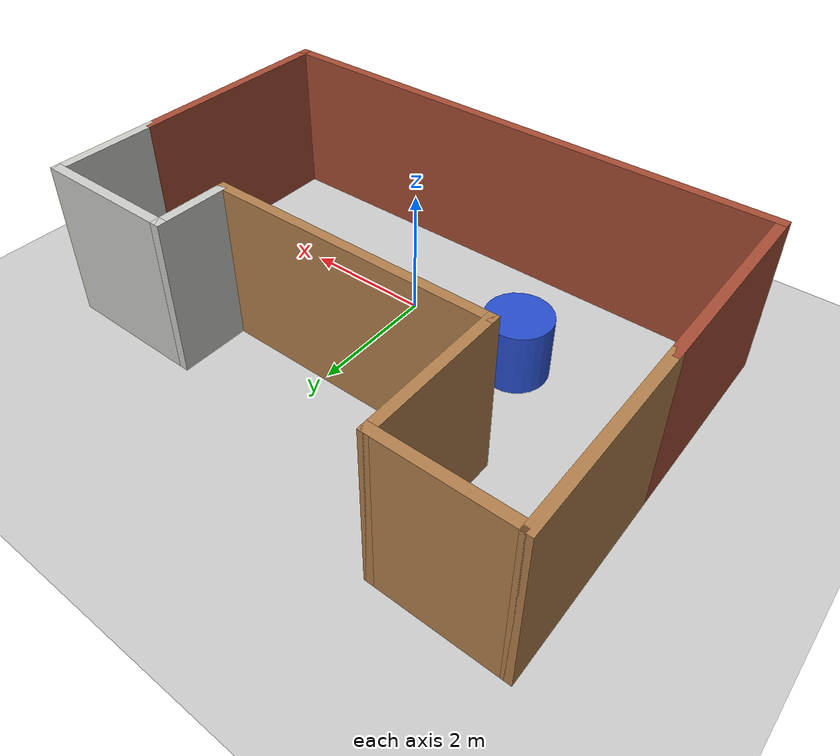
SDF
<sdf version="1.6">
 <world name="default">
  <light name="sun" type="directional">
   <pose>0 0 10 0 -0 0</pose>
   <diffuse>0.8 0.8 0.8 1</diffuse>
   <specular>0.2 0.2 0.2 1</specular>
   <attenuation>
    <range>1000</range>
    <constant>0.9</constant>
    <linear>0.01</linear>
    <quadratic>0.001</quadratic>
   </attenuation>
   <direction>-0.5 0.1 -0.9</direction>
  </light>
  <model name="ground_plane">
   <static>1</static>
   <link name="link">
    <collision name="collision">
     <geometry><plane><normal>0 0 1</normal><size>100 100</size></plane></geometry>
     <surface>
      <contact><collide_bitmask>65535</collide_bitmask></contact>
      <friction><ode><mu>100</mu><mu2>50</mu2></ode></friction>
     </surface>
    </collision>
    <visual name="visual">
     <cast_shadows>0</cast_shadows>
     <geometry><plane><normal>0 0 1</normal><size>100 100</size></plane></geometry>
     <material>
      <script><uri>file://media/materials/scripts/gazebo.material</uri><name>Gazebo/Grey</name></script>
     </material>
    </visual>
   </link>
  </model>
  <gravity>0 0 -9.8</gravity>
  <magnetic_field>6e-06 2.3e-05 -4.2e-05</magnetic_field>
  <atmosphere type="adiabatic"/>
  <physics name="default_physics" default="0" type="ode">
   <max_step_size>0.001</max_step_size>
   <real_time_factor>1</real_time_factor>
   <real_time_update_rate>1000</real_time_update_rate>
  </physics>
  <scene><ambient>0.4 0.4 0.4 1</ambient><background>0.7 0.7 0.7 1</background><shadows>1</shadows></scene>
  <spherical_coordinates>
   <surface_model>EARTH_WGS84</surface_model>
   <latitude_deg>0</latitude_deg>
   <longitude_deg>0</longitude_deg>
   <elevation>0</elevation>
   <heading_deg>0</heading_deg>
  </spherical_coordinates>
  <model name="Untitled">
   <pose>-0.2958 1.13226 0 0 -0 0</pose>
   <link name="Wall_28">
    <collision name="Wall_28_Collision">
     <geometry><box><size>3.25 0.15 2.5</size></box></geometry>
     <pose>0 0 1.25 0 -0 0</pose>
    </collision>
    <visual name="Wall_28_Visual">
     <pose>0 0 1.25 0 -0 0</pose>
     <geometry><box><size>3.25 0.15 2.5</size></box></geometry>
     <material>
      <script><uri>file://media/materials/scripts/gazebo.material</uri><name>Gazebo/Bricks</name></script>
      <ambient>1 1 1 1</ambient>
     </material>
     <meta><layer>0</layer></meta>
    </visual>
    <pose>-4.175 -1.425 0 0 0 -1.5708</pose>
   </link>
   <link name="Wall_29">
    <collision name="Wall_29_Collision">
     <geometry><box><size>8.5 0.15 2.5</size></box></geometry>
     <pose>0 0 1.25 0 -0 0</pose>
    </collision>
    <visual name="Wall_29_Visual">
     <pose>0 0 1.25 0 -0 0</pose>
     <geometry><box><size>8.5 0.15 2.5</size></box></geometry>
     <material>
      <script><uri>file://media/materials/scripts/gazebo.material</uri><name>Gazebo/Bricks</name></script>
      <ambient>1 1 1 1</ambient>
     </material>
     <meta><layer>0</layer></meta>
    </visual>
    <pose>0 -2.975 0 0 -0 0</pose>
   </link>
   <link name="Wall_30">
    <collision name="Wall_30_Collision">
     <geometry><box><size>3.5 0.15 2.5</size></box></geometry>
     <pose>0 0 1.25 0 -0 0</pose>
    </collision>
    <visual name="Wall_30_Visual">
     <pose>0 0 1.25 0 -0 0</pose>
     <geometry><box><size>3.5 0.15 2.5</size></box></geometry>
     <material>
      <script><uri>file://media/materials/scripts/gazebo.material</uri><name>Gazebo/Bricks</name></script>
      <ambient>1 1 1 1</ambient>
     </material>
     <meta><layer>0</layer></meta>
    </visual>
    <pose>4.175 -1.3 0 0 -0 1.5708</pose>
   </link>
   <link name="Wall_32">
    <collision name="Wall_32_Collision">
     <geometry><box><size>3 0.15 2.5</size></box></geometry>
     <pose>0 0 1.25 0 -0 0</pose>
    </collision>
    <visual name="Wall_32_Visual">
     <pose>0 0 1.25 0 -0 0</pose>
     <geometry><box><size>3 0.15 2.5</size></box></geometry>
     <material>
      <script><uri>file://media/materials/scripts/gazebo.material</uri><name>Gazebo/Wood</name></script>
      <ambient>1 1 1 1</ambient>
     </material>
     <meta><layer>0</layer></meta>
    </visual>
    <pose>-4.175 1.55 0 0 -0 1.5708</pose>
   </link>
   <link name="Wall_33">
    <collision name="Wall_33_Collision">
     <geometry><box><size>2 0.15 2.5</size></box></geometry>
     <pose>0 0 1.25 0 -0 0</pose>
    </collision>
    <visual name="Wall_33_Visual">
     <pose>0 0 1.25 0 -0 0</pose>
     <geometry><box><size>2 0.15 2.5</size></box></geometry>
     <material>
      <script><uri>file://media/materials/scripts/gazebo.material</uri><name>Gazebo/Wood</name></script>
      <ambient>1 1 1 1</ambient>
     </material>
     <meta><layer>0</layer></meta>
    </visual>
    <pose>-3.25 2.975 0 0 -0 0</pose>
   </link>
   <link name="Wall_34">
    <collision name="Wall_34_Collision">
     <geometry><box><size>2.25 0.15 2.5</size></box></geometry>
     <pose>0 0 1.25 0 -0 0</pose>
    </collision>
    <visual name="Wall_34_Visual">
     <pose>0 0 1.25 0 -0 0</pose>
     <geometry><box><size>2.25 0.15 2.5</size></box></geometry>
     <material>
      <script><uri>file://media/materials/scripts/gazebo.material</uri><name>Gazebo/Wood</name></script>
      <ambient>1 1 1 1</ambient>
     </material>
     <meta><layer>0</layer></meta>
    </visual>
    <pose>-2.325 1.925 0 0 0 -1.5708</pose>
   </link>
   <link name="Wall_35">
    <collision name="Wall_35_Collision">
     <geometry><box><size>4.5 0.15 2.5</size></box></geometry>
     <pose>0 0 1.25 0 -0 0</pose>
    </collision>
    <visual name="Wall_35_Visual">
     <pose>0 0 1.25 0 -0 0</pose>
     <geometry><box><size>4.5 0.15 2.5</size></box></geometry>
     <material>
      <script><uri>file://media/materials/scripts/gazebo.material</uri><name>Gazebo/Wood</name></script>
      <ambient>1 1 1 1</ambient>
     </material>
     <meta><layer>0</layer></meta>
    </visual>
    <pose>-0.15 0.875 0 0 -0 0</pose>
   </link>
   <link name="Wall_36">
    <collision name="Wall_36_Collision">
     <geometry><box><size>1.25 0.15 2.5</size></box></geometry>
     <pose>0 0 1.25 0 -0 0</pose>
    </collision>
    <visual name="Wall_36_Visual">
     <pose>0 0 1.25 0 -0 0</pose>
     <geometry><box><size>1.25 0.15 2.5</size></box></geometry>
     <material>
      <script><uri>file://media/materials/scripts/gazebo.material</uri><name>Gazebo/CeilingTiled</name></script>
      <ambient>1 1 1 1</ambient>
     </material>
     <meta><layer>0</layer></meta>
    </visual>
    <pose>2.025 1.425 0 0 -0 1.5708</pose>
   </link>
   <link name="Wall_40">
    <collision name="Wall_40_Collision">
     <geometry><box><size>1.75 0.15 2.5</size></box></geometry>
     <pose>0 0 1.25 0 -0 0</pose>
    </collision>
    <visual name="Wall_40_Visual">
     <pose>0 0 1.25 0 -0 0</pose>
     <geometry><box><size>1.75 0.15 2.5</size></box></geometry>
     <material>
      <script><uri>file://media/materials/scripts/gazebo.material</uri><name>Gazebo/CeilingTiled</name></script>
      <ambient>1 1 1 1</ambient>
     </material>
     <meta><layer>0</layer></meta>
    </visual>
    <pose>4.175 1.175 0 0 -0 1.5708</pose>
   </link>
   <link name="Wall_41">
    <collision name="Wall_41_Collision">
     <geometry><box><size>2.3 0.15 2.5</size></box></geometry>
     <pose>0 0 1.25 0 -0 0</pose>
    </collision>
    <visual name="Wall_41_Visual">
     <pose>0 0 1.25 0 -0 0</pose>
     <geometry><box><size>2.3 0.15 2.5</size></box></geometry>
     <material>
      <script><uri>file://media/materials/scripts/gazebo.material</uri><name>Gazebo/CeilingTiled</name></script>
      <ambient>1 1 1 1</ambient>
     </material>
     <meta><layer>0</layer></meta>
    </visual>
    <pose>3.1 1.975 0 0 0 -3.14159</pose>
   </link>
   <static>1</static>
  </model>
  <model name="unit_cylinder">
   <link name="link">
    <inertial>
     <mass>40</mass>
     <inertia><ixx>0.145833</ixx><ixy>0</ixy><ixz>0</ixz><iyy>0.145833</iyy><iyz>0</iyz><izz>0.125</izz></inertia>
    </inertial>
    <visual name="visual">
     <geometry><cylinder><radius>0.5</radius><length>1</length></cylinder></geometry>
     <material>
      <script><name>Gazebo/Blue</name><uri>file://media/materials/scripts/gazebo.material</uri></script>
      <shader type="pixel"><normal_map>__default__</normal_map></shader>
      <ambient>0 0 1 1</ambient>
      <diffuse>0 0 1 1</diffuse>
      <specular>0.01 0.01 0.01 1</specular>
      <emissive>0 0 0 1</emissive>
     </material>
    </visual>
    <collision name="collision">
     <geometry><cylinder><radius>0.5</radius><length>1</length></cylinder></geometry>
     <surface>
      <friction>
       <ode><mu>1</mu><mu2>1</mu2><fdir1>0 0 0</fdir1><slip1>0</slip1><slip2>0</slip2></ode>
       <torsional>
        <coefficient>1</coefficient>
        <patch_radius>0</patch_radius>
        <surface_radius>0</surface_radius>
        <use_patch_radius>1</use_patch_radius>
        <ode><slip>0</slip></ode>
       </torsional>
      </friction>
      <bounce><restitution_coefficient>0</restitution_coefficient><threshold>1e+06</threshold></bounce>
      <contact>
       <collide_without_contact>0</collide_without_contact>
       <collide_without_contact_bitmask>1</collide_without_contact_bitmask>
       <collide_bitmask>1</collide_bitmask>
       <ode>
        <soft_cfm>0</soft_cfm>
        <soft_erp>0.2</soft_erp>
        <kp>1e+13</kp>
        <kd>1</kd>
        <max_vel>0.01</max_vel>
        <min_depth>0</min_depth>
       </ode>
       <bullet>
        <split_impulse>1</split_impulse>
        <split_impulse_penetration_threshold>-0.01</split_impulse_penetration_threshold>
        <soft_cfm>0</soft_cfm>
        <soft_erp>0.2</soft_erp>
        <kp>1e+13</kp>
        <kd>1</kd>
       </bullet>
      </contact>
     </surface>
    </collision>
   </link>
   <static>0</static>
   <pose>-1.98331 0.221999 0.5 0 -0 0</pose>
  </model>
 </world>
</sdf>
